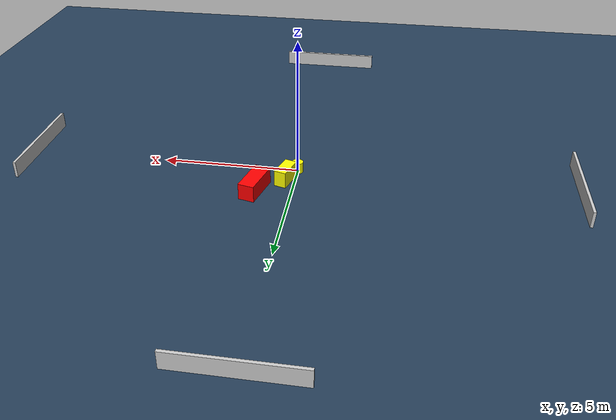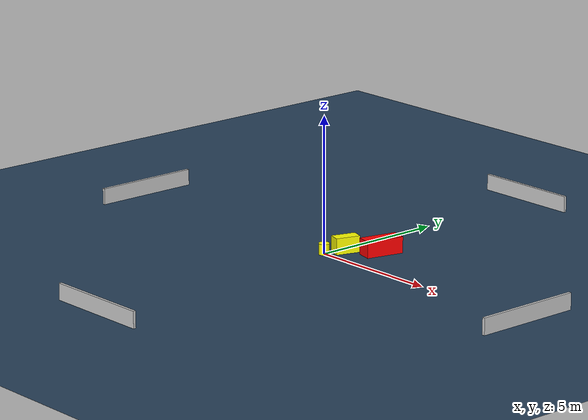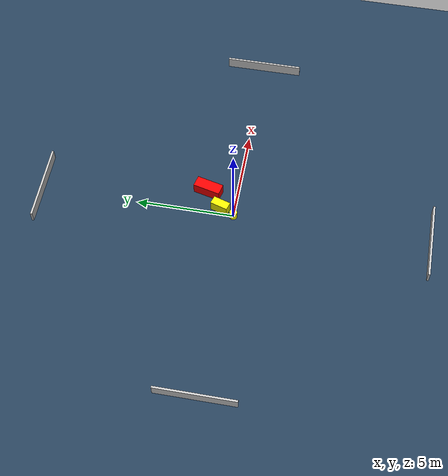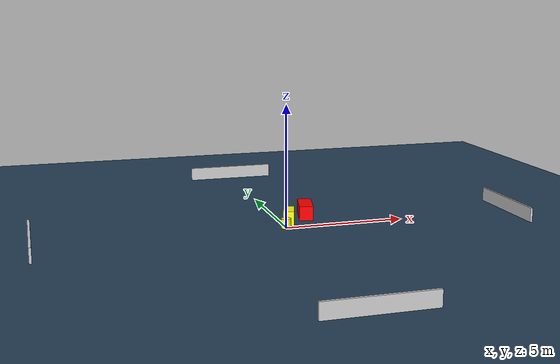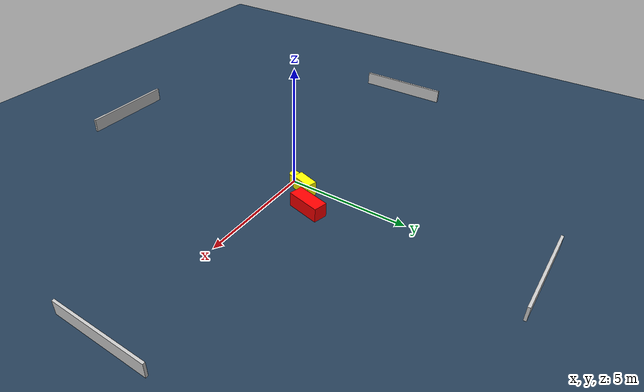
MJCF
<?xml version="1.0" ?>
<mujoco model="generated_environment">
  <option timestep="0.01" integrator="RK4" cone="elliptic"/>
  <default>
    <geom density="1"/>
  </default>
  <asset>
    <texture builtin="gradient" height="3072" name="skybox" rgb1="0.3 0.5 0.7" rgb2="0 0 0" type="skybox" width="512"/>
    <texture builtin="checker" height="300" name="groundplane" rgb1="0.2 0.3 0.4" rgb2="0.1 0.2 0.3" type="2d" width="300"/>
    <material name="groundplane" reflectance="0.2" texrepeat="5 5" texture="groundplane"/>
  </asset>
  <worldbody>
    <light dir="0 0 -1" directional="true" pos="0 0 1.5"/>
    <geom condim="3" friction="0.5 0.005 0.001" material="groundplane" name="floor" pos="0 0 0" size="0 0 0.05" type="plane"/>
    <body name="walls">
      <geom name="wall_1" condim="4" pos="-10.0 0.0 0.3" rgba="0.800000011920929 0.800000011920929 0.800000011920929 1.0" size="0.05 2.0 0.3" type="box"/>
      <geom name="wall_2" condim="4" pos="10.0 0.0 0.3" rgba="0.800000011920929 0.800000011920929 0.800000011920929 1.0" size="0.05 2.0 0.3" type="box"/>
      <geom name="wall_3" condim="4" pos="0.0 -10.0 0.3" rgba="0.800000011920929 0.800000011920929 0.800000011920929 1.0" size="2.0 0.05 0.3" type="box"/>
      <geom name="wall_4" condim="4" pos="0.0 10.0 0.3" rgba="0.800000011920929 0.800000011920929 0.800000011920929 1.0" size="2.0 0.05 0.3" type="box"/>
    </body>
    <body name="robot">
      <joint name="joint_x" type="slide" pos="0 0 0" axis="1 0 0"/>
      <joint name="joint_y" type="slide" pos="0 0 0" axis="0 1 0"/>
      <geom name="robot" type="cylinder" pos="0.0 0.0 0.2" size="0.2 0.2 0.0" mass="5.0" friction="1.0 0.005 0.0001" condim="4" rgba="1.0 1.0 0.0 1.0"/>
    </body>
    <body name="obstacle_1_movable">
      <geom name="obstacle_1_movable" condim="4" pos="0.3240078032906037 0.7230158881247832 0.3" euler="0 0 252.73075224572105" friction="0.0 0.005 0.001" rgba="1.0 1.0 0.0 1.0" size="0.4543633563547609 0.21835127549899447 0.3" type="box" mass="0.1"/>
      <joint type="free"/>
    </body>
    <body name="obstacle_2_static">
      <geom name="obstacle_2_static" condim="4" pos="1.2900488801804826 1.5278264016872671 0.3" euler="0 0 166.37491252214318" friction="0.0 0.005 0.001" rgba="1.0 0.0 0.0 1.0" size="0.29119674942755525 0.701898689112596 0.3" type="box"/>
    </body>
  </worldbody>
  <actuator>
    <motor name="actuator_x" joint="joint_x" gear="1" ctrlrange="-1 1"/>
    <motor name="actuator_y" joint="joint_y" gear="1" ctrlrange="-1 1"/>
  </actuator>
</mujoco>
